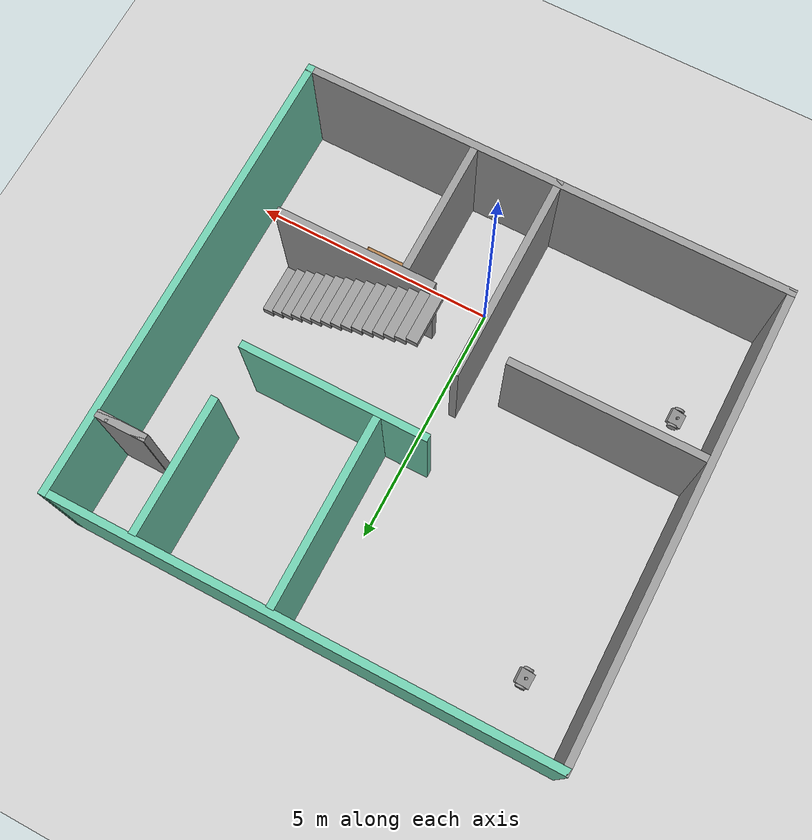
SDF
<sdf version="1.7">
 <world name="default">
  <plugin name="hello" filename="libhello.dylib"/>
  <light name="sun" type="directional">
   <pose>0 0 10 0 -0 0</pose>
   <diffuse>0.8 0.8 0.8 1</diffuse>
   <specular>0.2 0.2 0.2 1</specular>
   <attenuation>
    <range>1000</range>
    <constant>0.9</constant>
    <linear>0.01</linear>
    <quadratic>0.001</quadratic>
   </attenuation>
   <direction>-0.5 0.1 -0.9</direction>
   <spot><inner_angle>0</inner_angle><outer_angle>0</outer_angle><falloff>0</falloff></spot>
  </light>
  <model name="ground_plane">
   <static>1</static>
   <link name="link">
    <collision name="collision">
     <geometry><plane><normal>0 0 1</normal><size>100 100</size></plane></geometry>
     <surface>
      <contact><collide_bitmask>65535</collide_bitmask></contact>
      <friction><ode><mu>100</mu><mu2>50</mu2></ode></friction>
     </surface>
    </collision>
    <visual name="visual">
     <cast_shadows>0</cast_shadows>
     <geometry><plane><normal>0 0 1</normal><size>100 100</size></plane></geometry>
     <material>
      <script><uri>file://media/materials/scripts/gazebo.material</uri><name>Gazebo/Grey</name></script>
     </material>
    </visual>
   </link>
  </model>
  <gravity>0 0 -9.8</gravity>
  <magnetic_field>6e-06 2.3e-05 -4.2e-05</magnetic_field>
  <atmosphere type="adiabatic"/>
  <physics type="ode">
   <max_step_size>0.001</max_step_size>
   <real_time_factor>1</real_time_factor>
   <real_time_update_rate>1000</real_time_update_rate>
  </physics>
  <scene><ambient>0.4 0.4 0.4 1</ambient><background>0.7 0.7 0.7 1</background><shadows>1</shadows></scene>
  <spherical_coordinates>
   <surface_model>EARTH_WGS84</surface_model>
   <latitude_deg>0</latitude_deg>
   <longitude_deg>0</longitude_deg>
   <elevation>0</elevation>
   <heading_deg>0</heading_deg>
  </spherical_coordinates>
  <model name="our_house">
   <pose>-0.073859 2.59663 0 0 -0 0</pose>
   <link name="Stairs_0">
    <visual name="Stairs_0_Visual_0">
     <pose>3.89631 -1.16417 0.083333 0 -0 -1.5708</pose>
     <geometry><box><size>1 0.231 0.166667</size></box></geometry>
     <material>
      <script><uri>file://media/materials/scripts/gazebo.material</uri><name>Gazebo/Grey</name></script>
      <ambient>1 1 1 1</ambient>
     </material>
     <meta><layer>0</layer></meta>
    </visual>
    <collision name="Stairs_0_Collision_0">
     <geometry><box><size>1 0.231 0.166667</size></box></geometry>
     <pose>3.89631 -1.16417 0.083333 0 -0 -1.5708</pose>
    </collision>
    <visual name="Stairs_0_Visual_1">
     <pose>3.66531 -1.16417 0.25 0 -0 -1.5708</pose>
     <geometry><box><size>1 0.231 0.166667</size></box></geometry>
     <material>
      <script><uri>file://media/materials/scripts/gazebo.material</uri><name>Gazebo/Grey</name></script>
      <ambient>1 1 1 1</ambient>
     </material>
     <meta><layer>0</layer></meta>
    </visual>
    <collision name="Stairs_0_Collision_1">
     <geometry><box><size>1 0.231 0.166667</size></box></geometry>
     <pose>3.66531 -1.16417 0.25 0 -0 -1.5708</pose>
    </collision>
    <visual name="Stairs_0_Visual_2">
     <pose>3.43431 -1.16417 0.416667 0 -0 -1.5708</pose>
     <geometry><box><size>1 0.231 0.166667</size></box></geometry>
     <material>
      <script><uri>file://media/materials/scripts/gazebo.material</uri><name>Gazebo/Grey</name></script>
      <ambient>1 1 1 1</ambient>
     </material>
     <meta><layer>0</layer></meta>
    </visual>
    <collision name="Stairs_0_Collision_2">
     <geometry><box><size>1 0.231 0.166667</size></box></geometry>
     <pose>3.43431 -1.16417 0.416667 0 -0 -1.5708</pose>
    </collision>
    <visual name="Stairs_0_Visual_3">
     <pose>3.20331 -1.16417 0.583333 0 -0 -1.5708</pose>
     <geometry><box><size>1 0.231 0.166667</size></box></geometry>
     <material>
      <script><uri>file://media/materials/scripts/gazebo.material</uri><name>Gazebo/Grey</name></script>
      <ambient>1 1 1 1</ambient>
     </material>
     <meta><layer>0</layer></meta>
    </visual>
    <collision name="Stairs_0_Collision_3">
     <geometry><box><size>1 0.231 0.166667</size></box></geometry>
     <pose>3.20331 -1.16417 0.583333 0 -0 -1.5708</pose>
    </collision>
    <visual name="Stairs_0_Visual_4">
     <pose>2.97231 -1.16417 0.75 0 -0 -1.5708</pose>
     <geometry><box><size>1 0.231 0.166667</size></box></geometry>
     <material>
      <script><uri>file://media/materials/scripts/gazebo.material</uri><name>Gazebo/Grey</name></script>
      <ambient>1 1 1 1</ambient>
     </material>
     <meta><layer>0</layer></meta>
    </visual>
    <collision name="Stairs_0_Collision_4">
     <geometry><box><size>1 0.231 0.166667</size></box></geometry>
     <pose>2.97231 -1.16417 0.75 0 -0 -1.5708</pose>
    </collision>
    <visual name="Stairs_0_Visual_5">
     <pose>2.74131 -1.16417 0.916667 0 -0 -1.5708</pose>
     <geometry><box><size>1 0.231 0.166667</size></box></geometry>
     <material>
      <script><uri>file://media/materials/scripts/gazebo.material</uri><name>Gazebo/Grey</name></script>
      <ambient>1 1 1 1</ambient>
     </material>
     <meta><layer>0</layer></meta>
    </visual>
    <collision name="Stairs_0_Collision_5">
     <geometry><box><size>1 0.231 0.166667</size></box></geometry>
     <pose>2.74131 -1.16417 0.916667 0 -0 -1.5708</pose>
    </collision>
    <visual name="Stairs_0_Visual_6">
     <pose>2.51031 -1.16417 1.08333 0 -0 -1.5708</pose>
     <geometry><box><size>1 0.231 0.166667</size></box></geometry>
     <material>
      <script><uri>file://media/materials/scripts/gazebo.material</uri><name>Gazebo/Grey</name></script>
      <ambient>1 1 1 1</ambient>
     </material>
     <meta><layer>0</layer></meta>
    </visual>
    <collision name="Stairs_0_Collision_6">
     <geometry><box><size>1 0.231 0.166667</size></box></geometry>
     <pose>2.51031 -1.16417 1.08333 0 -0 -1.5708</pose>
    </collision>
    <visual name="Stairs_0_Visual_7">
     <pose>2.27931 -1.16417 1.25 0 -0 -1.5708</pose>
     <geometry><box><size>1 0.231 0.166667</size></box></geometry>
     <material>
      <script><uri>file://media/materials/scripts/gazebo.material</uri><name>Gazebo/Grey</name></script>
      <ambient>1 1 1 1</ambient>
     </material>
     <meta><layer>0</layer></meta>
    </visual>
    <collision name="Stairs_0_Collision_7">
     <geometry><box><size>1 0.231 0.166667</size></box></geometry>
     <pose>2.27931 -1.16417 1.25 0 -0 -1.5708</pose>
    </collision>
    <visual name="Stairs_0_Visual_8">
     <pose>2.04831 -1.16417 1.41667 0 -0 -1.5708</pose>
     <geometry><box><size>1 0.231 0.166667</size></box></geometry>
     <material>
      <script><uri>file://media/materials/scripts/gazebo.material</uri><name>Gazebo/Grey</name></script>
      <ambient>1 1 1 1</ambient>
     </material>
     <meta><layer>0</layer></meta>
    </visual>
    <collision name="Stairs_0_Collision_8">
     <geometry><box><size>1 0.231 0.166667</size></box></geometry>
     <pose>2.04831 -1.16417 1.41667 0 -0 -1.5708</pose>
    </collision>
    <visual name="Stairs_0_Visual_9">
     <pose>1.81731 -1.16417 1.58333 0 -0 -1.5708</pose>
     <geometry><box><size>1 0.231 0.166667</size></box></geometry>
     <material>
      <script><uri>file://media/materials/scripts/gazebo.material</uri><name>Gazebo/Grey</name></script>
      <ambient>1 1 1 1</ambient>
     </material>
     <meta><layer>0</layer></meta>
    </visual>
    <collision name="Stairs_0_Collision_9">
     <geometry><box><size>1 0.231 0.166667</size></box></geometry>
     <pose>1.81731 -1.16417 1.58333 0 -0 -1.5708</pose>
    </collision>
    <visual name="Stairs_0_Visual_10">
     <pose>1.58631 -1.16417 1.75 0 -0 -1.5708</pose>
     <geometry><box><size>1 0.231 0.166667</size></box></geometry>
     <material>
      <script><uri>file://media/materials/scripts/gazebo.material</uri><name>Gazebo/Grey</name></script>
      <ambient>1 1 1 1</ambient>
     </material>
     <meta><layer>0</layer></meta>
    </visual>
    <collision name="Stairs_0_Collision_10">
     <geometry><box><size>1 0.231 0.166667</size></box></geometry>
     <pose>1.58631 -1.16417 1.75 0 -0 -1.5708</pose>
    </collision>
    <visual name="Stairs_0_Visual_11">
     <pose>1.35531 -1.16417 1.91667 0 -0 -1.5708</pose>
     <geometry><box><size>1 0.231 0.166667</size></box></geometry>
     <material>
      <script><uri>file://media/materials/scripts/gazebo.material</uri><name>Gazebo/Grey</name></script>
      <ambient>1 1 1 1</ambient>
     </material>
     <meta><layer>0</layer></meta>
    </visual>
    <collision name="Stairs_0_Collision_11">
     <geometry><box><size>1 0.231 0.166667</size></box></geometry>
     <pose>1.35531 -1.16417 1.91667 0 -0 -1.5708</pose>
    </collision>
    <visual name="Stairs_0_Visual_12">
     <pose>1.12431 -1.16417 2.08333 0 -0 -1.5708</pose>
     <geometry><box><size>1 0.231 0.166667</size></box></geometry>
     <material>
      <script><uri>file://media/materials/scripts/gazebo.material</uri><name>Gazebo/Grey</name></script>
      <ambient>1 1 1 1</ambient>
     </material>
     <meta><layer>0</layer></meta>
    </visual>
    <collision name="Stairs_0_Collision_12">
     <geometry><box><size>1 0.231 0.166667</size></box></geometry>
     <pose>1.12431 -1.16417 2.08333 0 -0 -1.5708</pose>
    </collision>
    <visual name="Stairs_0_Visual_13">
     <pose>0.89331 -1.16417 2.25 0 -0 -1.5708</pose>
     <geometry><box><size>1 0.231 0.166667</size></box></geometry>
     <material>
      <script><uri>file://media/materials/scripts/gazebo.material</uri><name>Gazebo/Grey</name></script>
      <ambient>1 1 1 1</ambient>
     </material>
     <meta><layer>0</layer></meta>
    </visual>
    <collision name="Stairs_0_Collision_13">
     <geometry><box><size>1 0.231 0.166667</size></box></geometry>
     <pose>0.89331 -1.16417 2.25 0 -0 -1.5708</pose>
    </collision>
    <visual name="Stairs_0_Visual_14">
     <pose>0.66231 -1.16417 2.41667 0 -0 -1.5708</pose>
     <geometry><box><size>1 0.231 0.166667</size></box></geometry>
     <material>
      <script><uri>file://media/materials/scripts/gazebo.material</uri><name>Gazebo/Grey</name></script>
      <ambient>1 1 1 1</ambient>
     </material>
     <meta><layer>0</layer></meta>
    </visual>
    <collision name="Stairs_0_Collision_14">
     <geometry><box><size>1 0.231 0.166667</size></box></geometry>
     <pose>0.66231 -1.16417 2.41667 0 -0 -1.5708</pose>
    </collision>
   </link>
   <link name="Wall_0">
    <collision name="Wall_0_Collision">
     <geometry><box><size>10 0.15 2.5</size></box></geometry>
     <pose>0 0 1.25 0 -0 0</pose>
    </collision>
    <visual name="Wall_0_Visual">
     <pose>0 0 1.25 0 -0 0</pose>
     <geometry><box><size>10 0.15 2.5</size></box></geometry>
     <material>
      <script><uri>file://media/materials/scripts/gazebo.material</uri><name>Gazebo/Grey</name></script>
      <ambient>1 1 1 1</ambient>
     </material>
     <meta><layer>0</layer></meta>
    </visual>
    <pose>-0.001141 -4.63663 0 0 -0 0</pose>
   </link>
   <link name="Wall_1">
    <collision name="Wall_1_Collision">
     <geometry><box><size>9.42511 0.15 2.5</size></box></geometry>
     <pose>0 0 1.25 0 -0 0</pose>
    </collision>
    <visual name="Wall_1_Visual">
     <pose>0 0 1.25 0 -0 0</pose>
     <geometry><box><size>9.42511 0.15 2.5</size></box></geometry>
     <material>
      <script><uri>file://media/materials/scripts/gazebo.material</uri><name>Gazebo/Grey</name></script>
      <ambient>0.435294 0.796078 0.67451 1</ambient>
     </material>
     <meta><layer>0</layer></meta>
    </visual>
    <pose>4.925 0.000921 0 0 -0 1.57055</pose>
   </link>
   <link name="Wall_11">
    <collision name="Wall_11_Collision">
     <geometry><box><size>4.25 0.15 2.5</size></box></geometry>
     <pose>0 0 1.25 0 -0 0</pose>
    </collision>
    <visual name="Wall_11_Visual">
     <pose>0 0 1.25 0 -0 0</pose>
     <geometry><box><size>4.25 0.15 2.5</size></box></geometry>
     <material>
      <script><uri>file://media/materials/scripts/gazebo.material</uri><name>Gazebo/Grey</name></script>
      <ambient>1 1 1 1</ambient>
     </material>
     <meta><layer>0</layer></meta>
    </visual>
    <pose>-0.293634 -2.58849 0 0 -0 1.5708</pose>
   </link>
   <link name="Wall_13">
    <collision name="Wall_13_Collision">
     <geometry><box><size>3.75 0.15 2.5</size></box></geometry>
     <pose>0 0 1.25 0 -0 0</pose>
    </collision>
    <visual name="Wall_13_Visual">
     <pose>0 0 1.25 0 -0 0</pose>
     <geometry><box><size>3.75 0.15 2.5</size></box></geometry>
     <material>
      <script><uri>file://media/materials/scripts/gazebo.material</uri><name>Gazebo/Grey</name></script>
      <ambient>0.435294 0.796078 0.67451 1</ambient>
     </material>
     <meta><layer>0</layer></meta>
    </visual>
    <pose>1.43639 0.772014 0 0 -0 0</pose>
   </link>
   <link name="Wall_15">
    <collision name="Wall_15_Collision">
     <geometry><box><size>3.75 0.15 2.5</size></box></geometry>
     <pose>0 0 1.25 0 -0 0</pose>
    </collision>
    <visual name="Wall_15_Visual">
     <pose>0 0 1.25 0 -0 0</pose>
     <geometry><box><size>3.75 0.15 2.5</size></box></geometry>
     <material>
      <script><uri>file://media/materials/scripts/gazebo.material</uri><name>Gazebo/Grey</name></script>
      <ambient>0.435294 0.796078 0.67451 1</ambient>
     </material>
     <meta><layer>0</layer></meta>
    </visual>
    <pose>0.538267 2.71044 0 0 -0 1.5708</pose>
   </link>
   <link name="Wall_17">
    <collision name="Wall_17_Collision">
     <geometry><box><size>2.75 0.15 2.5</size></box></geometry>
     <pose>0 0 1.25 0 -0 0</pose>
    </collision>
    <visual name="Wall_17_Visual">
     <pose>0 0 1.25 0 -0 0</pose>
     <geometry><box><size>2.75 0.15 2.5</size></box></geometry>
     <material>
      <script><uri>file://media/materials/scripts/gazebo.material</uri><name>Gazebo/Grey</name></script>
      <ambient>0.435294 0.796078 0.67451 1</ambient>
     </material>
     <meta><layer>0</layer></meta>
    </visual>
    <pose>3.20438 3.20907 0 0 -0 -1.5708</pose>
   </link>
   <link name="Wall_2">
    <collision name="Wall_2_Collision">
     <geometry><box><size>10 0.15 2.5</size></box></geometry>
     <pose>0 0 1.25 0 -0 0</pose>
    </collision>
    <visual name="Wall_2_Visual">
     <pose>0 0 1.25 0 -0 0</pose>
     <geometry><box><size>10 0.15 2.5</size></box></geometry>
     <material>
      <script><uri>file://media/materials/scripts/gazebo.material</uri><name>Gazebo/Grey</name></script>
      <ambient>0.435294 0.796078 0.67451 1</ambient>
     </material>
     <meta><layer>0</layer></meta>
    </visual>
    <pose>0.001141 4.63848 0 0 -0 3.14159</pose>
   </link>
   <link name="Wall_20">
    <collision name="Wall_20_Collision">
     <geometry><box><size>0.15 0.15 2.5</size></box></geometry>
     <pose>0 0 1.25 0 -0 0</pose>
    </collision>
    <visual name="Wall_20_Visual">
     <pose>0 0 1.25 0 -0 0</pose>
     <geometry><box><size>0.15 0.15 2.5</size></box></geometry>
     <material>
      <script><uri>file://media/materials/scripts/gazebo.material</uri><name>Gazebo/Grey</name></script>
      <ambient>1 1 1 1</ambient>
     </material>
     <meta><layer>0</layer></meta>
    </visual>
    <pose>4.60646 3.02926 0 0 -0 0</pose>
   </link>
   <link name="Wall_21">
    <collision name="Wall_21_Collision">
     <geometry><box><size>0.15 0.15 2.5</size></box></geometry>
     <pose>0 0 1.25 0 -0 0</pose>
    </collision>
    <visual name="Wall_21_Visual">
     <pose>0 0 1.25 0 -0 0</pose>
     <geometry><box><size>0.15 0.15 2.5</size></box></geometry>
     <material>
      <script><uri>file://media/materials/scripts/gazebo.material</uri><name>Gazebo/Grey</name></script>
      <ambient>0.435294 0.796078 0.67451 1</ambient>
     </material>
     <meta><layer>0</layer></meta>
    </visual>
    <pose>4.60646 3.02926 0 0 -0 0</pose>
   </link>
   <link name="Wall_25">
    <collision name="Wall_25_Collision">
     <geometry><box><size>1 0.15 2.5</size></box></geometry>
     <pose>0 0 1.25 0 -0 0</pose>
    </collision>
    <visual name="Wall_25_Visual">
     <pose>0 0 1.25 0 -0 0</pose>
     <geometry><box><size>1 0.15 2.5</size></box></geometry>
     <material>
      <script><uri>file://media/materials/scripts/gazebo.material</uri><name>Gazebo/Grey</name></script>
      <ambient>1 1 1 1</ambient>
     </material>
     <meta><layer>0</layer></meta>
    </visual>
    <pose>4.37929 3.03721 0 0 -0 0</pose>
   </link>
   <link name="Wall_26">
    <collision name="Wall_26_Collision">
     <geometry><box><size>1 0.15 2.5</size></box></geometry>
     <pose>0 0 1.25 0 -0 0</pose>
    </collision>
    <visual name="Wall_26_Visual">
     <pose>0 0 1.25 0 -0 0</pose>
     <geometry><box><size>1 0.15 2.5</size></box></geometry>
     <material>
      <script><uri>file://media/materials/scripts/gazebo.material</uri><name>Gazebo/Grey</name></script>
      <ambient>1 1 1 1</ambient>
     </material>
     <meta><layer>0</layer></meta>
    </visual>
    <pose>4.37173 3.02965 0 0 -0 3.14159</pose>
   </link>
   <link name="Wall_3">
    <collision name="Wall_3_Collision">
     <geometry><box><size>9.42511 0.15 2.5</size></box></geometry>
     <pose>0 0 1.25 0 -0 0</pose>
    </collision>
    <visual name="Wall_3_Visual">
     <pose>0 0 1.25 0 -0 0</pose>
     <geometry><box><size>9.42511 0.15 2.5</size></box></geometry>
     <material>
      <script><uri>file://media/materials/scripts/gazebo.material</uri><name>Gazebo/Grey</name></script>
      <ambient>1 1 1 1</ambient>
     </material>
     <meta><layer>0</layer></meta>
    </visual>
    <pose>-4.925 0.000921 0 0 -0 -1.57104</pose>
   </link>
   <link name="Wall_5">
    <collision name="Wall_5_Collision">
     <geometry><box><size>2.75 0.15 2.5</size></box></geometry>
     <pose>0 0 1.25 0 -0 0</pose>
    </collision>
    <visual name="Wall_5_Visual">
     <pose>0 0 1.25 0 -0 0</pose>
     <geometry><box><size>2.75 0.15 2.5</size></box></geometry>
     <material>
      <script><uri>file://media/materials/scripts/gazebo.material</uri><name>Gazebo/Grey</name></script>
      <ambient>1 1 1 1</ambient>
     </material>
     <meta><layer>0</layer></meta>
    </visual>
    <pose>1.40888 -3.23341 0 0 -0 -1.5708</pose>
   </link>
   <link name="Wall_7">
    <collision name="Wall_7_Collision">
     <geometry><box><size>3.25 0.15 2.5</size></box></geometry>
     <pose>0 0 1.25 0 -0 0</pose>
    </collision>
    <visual name="Wall_7_Visual">
     <pose>0 0 1.25 0 -0 0</pose>
     <geometry><box><size>3.25 0.15 2.5</size></box></geometry>
     <material>
      <script><uri>file://media/materials/scripts/gazebo.material</uri><name>Gazebo/Grey</name></script>
      <ambient>1 1 1 1</ambient>
     </material>
     <meta><layer>0</layer></meta>
    </visual>
    <pose>2.40641 -1.776 0 0 -0 0</pose>
   </link>
   <link name="Wall_9">
    <collision name="Wall_9_Collision">
     <geometry><box><size>4 0.15 2.5</size></box></geometry>
     <pose>0 0 1.25 0 -0 0</pose>
    </collision>
    <visual name="Wall_9_Visual">
     <pose>0 0 1.25 0 -0 0</pose>
     <geometry><box><size>4 0.15 2.5</size></box></geometry>
     <material>
      <script><uri>file://media/materials/scripts/gazebo.material</uri><name>Gazebo/Grey</name></script>
      <ambient>1 1 1 1</ambient>
     </material>
     <meta><layer>0</layer></meta>
    </visual>
    <pose>-2.99752 -1.12887 0 0 -0 0</pose>
   </link>
   <static>1</static>
  </model>
  <model name="bookshelf">
   <static>1</static>
   <link name="link">
    <inertial><mass>1</mass></inertial>
    <collision name="back">
     <pose>0 0.005 0.6 0 -0 0</pose>
     <geometry><box><size>0.9 0.01 1.2</size></box></geometry>
    </collision>
    <visual name="visual1">
     <pose>0 0.005 0.6 0 -0 0</pose>
     <geometry><box><size>0.9 0.01 1.2</size></box></geometry>
     <material>
      <script><uri>file://media/materials/scripts/gazebo.material</uri><name>Gazebo/Wood</name></script>
     </material>
    </visual>
    <collision name="left_side">
     <pose>0.45 -0.195 0.6 0 -0 0</pose>
     <geometry><box><size>0.02 0.4 1.2</size></box></geometry>
    </collision>
    <visual name="visual2">
     <pose>0.45 -0.195 0.6 0 -0 0</pose>
     <geometry><box><size>0.02 0.4 1.2</size></box></geometry>
     <material>
      <script><uri>file://media/materials/scripts/gazebo.material</uri><name>Gazebo/Wood</name></script>
     </material>
    </visual>
    <collision name="right_side">
     <pose>-0.45 -0.195 0.6 0 -0 0</pose>
     <geometry><box><size>0.02 0.4 1.2</size></box></geometry>
    </collision>
    <visual name="visual3">
     <pose>-0.45 -0.195 0.6 0 -0 0</pose>
     <geometry><box><size>0.02 0.4 1.2</size></box></geometry>
     <material>
      <script><uri>file://media/materials/scripts/gazebo.material</uri><name>Gazebo/Wood</name></script>
     </material>
    </visual>
    <collision name="bottom">
     <pose>0 -0.195 0.03 0 -0 0</pose>
     <geometry><box><size>0.88 0.4 0.06</size></box></geometry>
    </collision>
    <visual name="visual4">
     <pose>0 -0.195 0.03 0 -0 0</pose>
     <geometry><box><size>0.88 0.4 0.06</size></box></geometry>
     <material>
      <script><uri>file://media/materials/scripts/gazebo.material</uri><name>Gazebo/Wood</name></script>
     </material>
    </visual>
    <collision name="top">
     <pose>0 -0.195 1.19 0 -0 0</pose>
     <geometry><box><size>0.88 0.4 0.02</size></box></geometry>
    </collision>
    <visual name="visual5">
     <pose>0 -0.195 1.19 0 -0 0</pose>
     <geometry><box><size>0.88 0.4 0.02</size></box></geometry>
     <material>
      <script><uri>file://media/materials/scripts/gazebo.material</uri><name>Gazebo/Wood</name></script>
     </material>
    </visual>
    <collision name="low_shelf">
     <pose>0 -0.195 0.43 0 -0 0</pose>
     <geometry><box><size>0.88 0.4 0.02</size></box></geometry>
    </collision>
    <visual name="visual6">
     <pose>0 -0.195 0.43 0 -0 0</pose>
     <geometry><box><size>0.88 0.4 0.02</size></box></geometry>
     <material>
      <script><uri>file://media/materials/scripts/gazebo.material</uri><name>Gazebo/Wood</name></script>
     </material>
    </visual>
    <collision name="high_shelf">
     <pose>0 -0.195 0.8 0 -0 0</pose>
     <geometry><box><size>0.88 0.4 0.02</size></box></geometry>
    </collision>
    <visual name="visual7">
     <pose>0 -0.195 0.8 0 -0 0</pose>
     <geometry><box><size>0.88 0.4 0.02</size></box></geometry>
     <material>
      <script><uri>file://media/materials/scripts/gazebo.material</uri><name>Gazebo/Wood</name></script>
     </material>
    </visual>
   </link>
   <pose>2 0.584426 0 0 -0 0</pose>
  </model>
  <model name="my_robot">
   <link name="link_3">
    <inertial>
     <mass>1</mass>
     <inertia><ixx>0.145833</ixx><ixy>0</ixy><ixz>0</ixz><iyy>0.145833</iyy><iyz>0</iyz><izz>0.125</izz></inertia>
    </inertial>
    <pose>-8.2547 0.437994 0.48125 -0 -0 -0</pose>
    <visual name="visual">
     <pose>0 0 0 1.5707 -0 0</pose>
     <geometry><cylinder><radius>0.1</radius><length>0.05</length></cylinder></geometry>
     <material>
      <lighting>1</lighting>
      <script><uri>file://media/materials/scripts/gazebo.material</uri><name>Gazebo/Grey</name></script>
      <shader type="pixel"><normal_map>__default__</normal_map></shader>
      <ambient>0.3 0.3 0.3 1</ambient>
      <diffuse>0.7 0.7 0.7 1</diffuse>
      <specular>0.01 0.01 0.01 1</specular>
      <emissive>0 0 0 1</emissive>
     </material>
    </visual>
    <collision name="collision">
     <pose>0 0 0 1.5707 -0 0</pose>
     <geometry><cylinder><radius>0.1</radius><length>0.05</length></cylinder></geometry>
     <surface>
      <friction>
       <ode><mu>1</mu><mu2>1</mu2><fdir1>0 0 0</fdir1><slip1>0</slip1><slip2>0</slip2></ode>
       <torsional>
        <coefficient>1</coefficient>
        <patch_radius>0</patch_radius>
        <surface_radius>0</surface_radius>
        <use_patch_radius>1</use_patch_radius>
        <ode><slip>0</slip></ode>
       </torsional>
      </friction>
      <bounce><restitution_coefficient>0</restitution_coefficient><threshold>1e+06</threshold></bounce>
      <contact>
       <collide_without_contact>0</collide_without_contact>
       <collide_without_contact_bitmask>1</collide_without_contact_bitmask>
       <collide_bitmask>1</collide_bitmask>
       <ode>
        <soft_cfm>0</soft_cfm>
        <soft_erp>0.2</soft_erp>
        <kp>1e+13</kp>
        <kd>1</kd>
        <max_vel>0.01</max_vel>
        <min_depth>0</min_depth>
       </ode>
       <bullet>
        <split_impulse>1</split_impulse>
        <split_impulse_penetration_threshold>-0.01</split_impulse_penetration_threshold>
        <soft_cfm>0</soft_cfm>
        <soft_erp>0.2</soft_erp>
        <kp>1e+13</kp>
        <kd>1</kd>
       </bullet>
      </contact>
     </surface>
    </collision>
   </link>
   <link name="link_5">
    <inertial>
     <mass>1</mass>
     <inertia><ixx>0.145833</ixx><ixy>0</ixy><ixz>0</ixz><iyy>0.145833</iyy><iyz>0</iyz><izz>0.125</izz></inertia>
     <pose>0 0 0 1.5707 -0 0</pose>
    </inertial>
    <pose>-8.2547 0.787994 0.48125 -0 -0 -0</pose>
    <visual name="visual">
     <pose>0 0 0 -1.5707 0 0</pose>
     <geometry><cylinder><radius>0.1</radius><length>0.05</length></cylinder></geometry>
     <material>
      <lighting>1</lighting>
      <script><uri>file://media/materials/scripts/gazebo.material</uri><name>Gazebo/Grey</name></script>
      <shader type="pixel"><normal_map>__default__</normal_map></shader>
      <ambient>0.3 0.3 0.3 1</ambient>
      <diffuse>0.7 0.7 0.7 1</diffuse>
      <specular>0.01 0.01 0.01 1</specular>
      <emissive>0 0 0 1</emissive>
     </material>
    </visual>
    <collision name="collision">
     <pose>0 0 0 1.5707 -0 0</pose>
     <geometry><cylinder><radius>0.1</radius><length>0.05</length></cylinder></geometry>
     <surface>
      <friction>
       <ode><mu>1</mu><mu2>1</mu2><fdir1>0 0 0</fdir1><slip1>0</slip1><slip2>0</slip2></ode>
       <torsional>
        <coefficient>1</coefficient>
        <patch_radius>0</patch_radius>
        <surface_radius>0</surface_radius>
        <use_patch_radius>1</use_patch_radius>
        <ode><slip>0</slip></ode>
       </torsional>
      </friction>
      <bounce><restitution_coefficient>0</restitution_coefficient><threshold>1e+06</threshold></bounce>
      <contact>
       <collide_without_contact>0</collide_without_contact>
       <collide_without_contact_bitmask>1</collide_without_contact_bitmask>
       <collide_bitmask>1</collide_bitmask>
       <ode>
        <soft_cfm>0</soft_cfm>
        <soft_erp>0.2</soft_erp>
        <kp>1e+13</kp>
        <kd>1</kd>
        <max_vel>0.01</max_vel>
        <min_depth>0</min_depth>
       </ode>
       <bullet>
        <split_impulse>1</split_impulse>
        <split_impulse_penetration_threshold>-0.01</split_impulse_penetration_threshold>
        <soft_cfm>0</soft_cfm>
        <soft_erp>0.2</soft_erp>
        <kp>1e+13</kp>
        <kd>1</kd>
       </bullet>
      </contact>
     </surface>
    </collision>
   </link>
   <link name="link_6">
    <inertial>
     <mass>1</mass>
     <inertia>
      <ixx>0.166667</ixx>
      <ixy>0</ixy>
      <ixz>0</ixz>
      <iyy>0.166667</iyy>
      <iyz>0</iyz>
      <izz>0.166667</izz>
     </inertia>
    </inertial>
    <pose>-8.2547 0.612994 0.48125 -0 -0 -0</pose>
    <visual name="visual">
     <geometry><box><size>0.3 0.3 0.1</size></box></geometry>
     <material>
      <lighting>1</lighting>
      <script><uri>file://media/materials/scripts/gazebo.material</uri><name>Gazebo/Grey</name></script>
      <shader type="pixel"><normal_map>__default__</normal_map></shader>
      <ambient>0.3 0.3 0.3 1</ambient>
      <diffuse>0.7 0.7 0.7 1</diffuse>
      <specular>0.01 0.01 0.01 1</specular>
      <emissive>0 0 0 1</emissive>
     </material>
    </visual>
    <collision name="collision">
     <geometry><box><size>0.3 0.3 0.1</size></box></geometry>
     <surface>
      <friction>
       <ode><mu>1</mu><mu2>1</mu2><fdir1>0 0 0</fdir1><slip1>0</slip1><slip2>0</slip2></ode>
       <torsional>
        <coefficient>1</coefficient>
        <patch_radius>0</patch_radius>
        <surface_radius>0</surface_radius>
        <use_patch_radius>1</use_patch_radius>
        <ode><slip>0</slip></ode>
       </torsional>
      </friction>
      <bounce><restitution_coefficient>0</restitution_coefficient><threshold>1e+06</threshold></bounce>
      <contact>
       <collide_without_contact>0</collide_without_contact>
       <collide_without_contact_bitmask>1</collide_without_contact_bitmask>
       <collide_bitmask>1</collide_bitmask>
       <ode>
        <soft_cfm>0</soft_cfm>
        <soft_erp>0.2</soft_erp>
        <kp>1e+13</kp>
        <kd>1</kd>
        <max_vel>0.01</max_vel>
        <min_depth>0</min_depth>
       </ode>
       <bullet>
        <split_impulse>1</split_impulse>
        <split_impulse_penetration_threshold>-0.01</split_impulse_penetration_threshold>
        <soft_cfm>0</soft_cfm>
        <soft_erp>0.2</soft_erp>
        <kp>1e+13</kp>
        <kd>1</kd>
       </bullet>
      </contact>
     </surface>
    </collision>
   </link>
   <link name="link_7">
    <inertial>
     <mass>1</mass>
     <inertia><ixx>0.145833</ixx><ixy>0</ixy><ixz>0</ixz><iyy>0.145833</iyy><iyz>0</iyz><izz>0.125</izz></inertia>
    </inertial>
    <pose>-8.2547 0.612994 0.55625 -0 -0 -0</pose>
    <visual name="visual">
     <geometry><cylinder><radius>0.025</radius><length>0.05</length></cylinder></geometry>
     <material>
      <lighting>1</lighting>
      <script><uri>file://media/materials/scripts/gazebo.material</uri><name>Gazebo/Grey</name></script>
      <shader type="pixel"><normal_map>__default__</normal_map></shader>
      <ambient>0.3 0.3 0.3 1</ambient>
      <diffuse>0.7 0.7 0.7 1</diffuse>
      <specular>0.01 0.01 0.01 1</specular>
      <emissive>0 0 0 1</emissive>
     </material>
    </visual>
    <collision name="collision">
     <geometry><cylinder><radius>0.025</radius><length>0.05</length></cylinder></geometry>
     <surface>
      <friction>
       <ode><mu>1</mu><mu2>1</mu2><fdir1>0 0 0</fdir1><slip1>0</slip1><slip2>0</slip2></ode>
       <torsional>
        <coefficient>1</coefficient>
        <patch_radius>0</patch_radius>
        <surface_radius>0</surface_radius>
        <use_patch_radius>1</use_patch_radius>
        <ode><slip>0</slip></ode>
       </torsional>
      </friction>
      <bounce><restitution_coefficient>0</restitution_coefficient><threshold>1e+06</threshold></bounce>
      <contact>
       <collide_without_contact>0</collide_without_contact>
       <collide_without_contact_bitmask>1</collide_without_contact_bitmask>
       <collide_bitmask>1</collide_bitmask>
       <ode>
        <soft_cfm>0</soft_cfm>
        <soft_erp>0.2</soft_erp>
        <kp>1e+13</kp>
        <kd>1</kd>
        <max_vel>0.01</max_vel>
        <min_depth>0</min_depth>
       </ode>
       <bullet>
        <split_impulse>1</split_impulse>
        <split_impulse_penetration_threshold>-0.01</split_impulse_penetration_threshold>
        <soft_cfm>0</soft_cfm>
        <soft_erp>0.2</soft_erp>
        <kp>1e+13</kp>
        <kd>1</kd>
       </bullet>
      </contact>
     </surface>
    </collision>
   </link>
   <joint name="link_6_JOINT_4" type="revolute">
    <parent>link_6</parent>
    <child>link_5</child>
    <axis>
     <xyz>0 0 1</xyz>
     <limit>
      <lower>-1.79769e+308</lower>
      <upper>1.79769e+308</upper>
      <effort>-1</effort>
      <velocity>-1</velocity>
     </limit>
     <dynamics>
      <spring_reference>0</spring_reference>
      <spring_stiffness>0</spring_stiffness>
      <damping>0</damping>
      <friction>0</friction>
     </dynamics>
    </axis>
    <physics>
     <ode><limit><cfm>0</cfm><erp>0.2</erp></limit><suspension><cfm>0</cfm><erp>0.2</erp></suspension></ode>
    </physics>
   </joint>
   <joint name="link_6_JOINT_5" type="revolute">
    <parent>link_6</parent>
    <child>link_3</child>
    <axis>
     <xyz>0 0 1</xyz>
     <limit>
      <lower>-1.79769e+308</lower>
      <upper>1.79769e+308</upper>
      <effort>-1</effort>
      <velocity>-1</velocity>
     </limit>
     <dynamics>
      <spring_reference>0</spring_reference>
      <spring_stiffness>0</spring_stiffness>
      <damping>0</damping>
      <friction>0</friction>
     </dynamics>
    </axis>
    <physics>
     <ode><limit><cfm>0</cfm><erp>0.2</erp></limit><suspension><cfm>0</cfm><erp>0.2</erp></suspension></ode>
    </physics>
   </joint>
   <joint name="link_6_JOINT_6" type="fixed">
    <parent>link_6</parent>
    <child>link_7</child>
    <physics>
     <ode><limit><cfm>0</cfm><erp>0.2</erp></limit><suspension><cfm>0</cfm><erp>0.2</erp></suspension></ode>
    </physics>
   </joint>
   <static>0</static>
   <pose>3.65865 -0.469745 2.58082 0.000103 -0.362959 -0.007984</pose>
  </model>
  <model name="my_robot_clone">
   <link name="link_3">
    <inertial>
     <mass>1</mass>
     <inertia><ixx>0.145833</ixx><ixy>0</ixy><ixz>0</ixz><iyy>0.145833</iyy><iyz>0</iyz><izz>0.125</izz></inertia>
    </inertial>
    <pose>-8.2547 0.437994 0.48125 -0 -0 -0</pose>
    <visual name="visual">
     <pose>0 0 0 1.5707 -0 0</pose>
     <geometry><cylinder><radius>0.1</radius><length>0.05</length></cylinder></geometry>
     <material>
      <lighting>1</lighting>
      <script><uri>file://media/materials/scripts/gazebo.material</uri><name>Gazebo/Grey</name></script>
      <shader type="pixel"><normal_map>__default__</normal_map></shader>
      <ambient>0.3 0.3 0.3 1</ambient>
      <diffuse>0.7 0.7 0.7 1</diffuse>
      <specular>0.01 0.01 0.01 1</specular>
      <emissive>0 0 0 1</emissive>
     </material>
    </visual>
    <collision name="collision">
     <pose>0 0 0 1.5707 -0 0</pose>
     <geometry><cylinder><radius>0.1</radius><length>0.05</length></cylinder></geometry>
     <surface>
      <friction>
       <ode><mu>1</mu><mu2>1</mu2><fdir1>0 0 0</fdir1><slip1>0</slip1><slip2>0</slip2></ode>
       <torsional>
        <coefficient>1</coefficient>
        <patch_radius>0</patch_radius>
        <surface_radius>0</surface_radius>
        <use_patch_radius>1</use_patch_radius>
        <ode><slip>0</slip></ode>
       </torsional>
      </friction>
      <bounce><restitution_coefficient>0</restitution_coefficient><threshold>1e+06</threshold></bounce>
      <contact>
       <collide_without_contact>0</collide_without_contact>
       <collide_without_contact_bitmask>1</collide_without_contact_bitmask>
       <collide_bitmask>1</collide_bitmask>
       <ode>
        <soft_cfm>0</soft_cfm>
        <soft_erp>0.2</soft_erp>
        <kp>1e+13</kp>
        <kd>1</kd>
        <max_vel>0.01</max_vel>
        <min_depth>0</min_depth>
       </ode>
       <bullet>
        <split_impulse>1</split_impulse>
        <split_impulse_penetration_threshold>-0.01</split_impulse_penetration_threshold>
        <soft_cfm>0</soft_cfm>
        <soft_erp>0.2</soft_erp>
        <kp>1e+13</kp>
        <kd>1</kd>
       </bullet>
      </contact>
     </surface>
    </collision>
   </link>
   <link name="link_5">
    <inertial>
     <mass>1</mass>
     <inertia><ixx>0.145833</ixx><ixy>0</ixy><ixz>0</ixz><iyy>0.145833</iyy><iyz>0</iyz><izz>0.125</izz></inertia>
     <pose>0 0 0 1.5707 -0 0</pose>
    </inertial>
    <pose>-8.2547 0.787994 0.48125 -0 -0 -0</pose>
    <visual name="visual">
     <pose>0 0 0 -1.5707 0 0</pose>
     <geometry><cylinder><radius>0.1</radius><length>0.05</length></cylinder></geometry>
     <material>
      <lighting>1</lighting>
      <script><uri>file://media/materials/scripts/gazebo.material</uri><name>Gazebo/Grey</name></script>
      <shader type="pixel"><normal_map>__default__</normal_map></shader>
      <ambient>0.3 0.3 0.3 1</ambient>
      <diffuse>0.7 0.7 0.7 1</diffuse>
      <specular>0.01 0.01 0.01 1</specular>
      <emissive>0 0 0 1</emissive>
     </material>
    </visual>
    <collision name="collision">
     <pose>0 0 0 1.5707 -0 0</pose>
     <geometry><cylinder><radius>0.1</radius><length>0.05</length></cylinder></geometry>
     <surface>
      <friction>
       <ode><mu>1</mu><mu2>1</mu2><fdir1>0 0 0</fdir1><slip1>0</slip1><slip2>0</slip2></ode>
       <torsional>
        <coefficient>1</coefficient>
        <patch_radius>0</patch_radius>
        <surface_radius>0</surface_radius>
        <use_patch_radius>1</use_patch_radius>
        <ode><slip>0</slip></ode>
       </torsional>
      </friction>
      <bounce><restitution_coefficient>0</restitution_coefficient><threshold>1e+06</threshold></bounce>
      <contact>
       <collide_without_contact>0</collide_without_contact>
       <collide_without_contact_bitmask>1</collide_without_contact_bitmask>
       <collide_bitmask>1</collide_bitmask>
       <ode>
        <soft_cfm>0</soft_cfm>
        <soft_erp>0.2</soft_erp>
        <kp>1e+13</kp>
        <kd>1</kd>
        <max_vel>0.01</max_vel>
        <min_depth>0</min_depth>
       </ode>
       <bullet>
        <split_impulse>1</split_impulse>
        <split_impulse_penetration_threshold>-0.01</split_impulse_penetration_threshold>
        <soft_cfm>0</soft_cfm>
        <soft_erp>0.2</soft_erp>
        <kp>1e+13</kp>
        <kd>1</kd>
       </bullet>
      </contact>
     </surface>
    </collision>
   </link>
   <link name="link_6">
    <inertial>
     <mass>1</mass>
     <inertia>
      <ixx>0.166667</ixx>
      <ixy>0</ixy>
      <ixz>0</ixz>
      <iyy>0.166667</iyy>
      <iyz>0</iyz>
      <izz>0.166667</izz>
     </inertia>
    </inertial>
    <pose>-8.2547 0.612994 0.48125 -0 -0 -0</pose>
    <visual name="visual">
     <geometry><box><size>0.3 0.3 0.1</size></box></geometry>
     <material>
      <lighting>1</lighting>
      <script><uri>file://media/materials/scripts/gazebo.material</uri><name>Gazebo/Grey</name></script>
      <shader type="pixel"><normal_map>__default__</normal_map></shader>
      <ambient>0.3 0.3 0.3 1</ambient>
      <diffuse>0.7 0.7 0.7 1</diffuse>
      <specular>0.01 0.01 0.01 1</specular>
      <emissive>0 0 0 1</emissive>
     </material>
    </visual>
    <collision name="collision">
     <geometry><box><size>0.3 0.3 0.1</size></box></geometry>
     <surface>
      <friction>
       <ode><mu>1</mu><mu2>1</mu2><fdir1>0 0 0</fdir1><slip1>0</slip1><slip2>0</slip2></ode>
       <torsional>
        <coefficient>1</coefficient>
        <patch_radius>0</patch_radius>
        <surface_radius>0</surface_radius>
        <use_patch_radius>1</use_patch_radius>
        <ode><slip>0</slip></ode>
       </torsional>
      </friction>
      <bounce><restitution_coefficient>0</restitution_coefficient><threshold>1e+06</threshold></bounce>
      <contact>
       <collide_without_contact>0</collide_without_contact>
       <collide_without_contact_bitmask>1</collide_without_contact_bitmask>
       <collide_bitmask>1</collide_bitmask>
       <ode>
        <soft_cfm>0</soft_cfm>
        <soft_erp>0.2</soft_erp>
        <kp>1e+13</kp>
        <kd>1</kd>
        <max_vel>0.01</max_vel>
        <min_depth>0</min_depth>
       </ode>
       <bullet>
        <split_impulse>1</split_impulse>
        <split_impulse_penetration_threshold>-0.01</split_impulse_penetration_threshold>
        <soft_cfm>0</soft_cfm>
        <soft_erp>0.2</soft_erp>
        <kp>1e+13</kp>
        <kd>1</kd>
       </bullet>
      </contact>
     </surface>
    </collision>
   </link>
   <link name="link_7">
    <inertial>
     <mass>1</mass>
     <inertia><ixx>0.145833</ixx><ixy>0</ixy><ixz>0</ixz><iyy>0.145833</iyy><iyz>0</iyz><izz>0.125</izz></inertia>
    </inertial>
    <pose>-8.2547 0.612994 0.55625 -0 -0 -0</pose>
    <visual name="visual">
     <geometry><cylinder><radius>0.025</radius><length>0.05</length></cylinder></geometry>
     <material>
      <lighting>1</lighting>
      <script><uri>file://media/materials/scripts/gazebo.material</uri><name>Gazebo/Grey</name></script>
      <shader type="pixel"><normal_map>__default__</normal_map></shader>
      <ambient>0.3 0.3 0.3 1</ambient>
      <diffuse>0.7 0.7 0.7 1</diffuse>
      <specular>0.01 0.01 0.01 1</specular>
      <emissive>0 0 0 1</emissive>
     </material>
    </visual>
    <collision name="collision">
     <geometry><cylinder><radius>0.025</radius><length>0.05</length></cylinder></geometry>
     <surface>
      <friction>
       <ode><mu>1</mu><mu2>1</mu2><fdir1>0 0 0</fdir1><slip1>0</slip1><slip2>0</slip2></ode>
       <torsional>
        <coefficient>1</coefficient>
        <patch_radius>0</patch_radius>
        <surface_radius>0</surface_radius>
        <use_patch_radius>1</use_patch_radius>
        <ode><slip>0</slip></ode>
       </torsional>
      </friction>
      <bounce><restitution_coefficient>0</restitution_coefficient><threshold>1e+06</threshold></bounce>
      <contact>
       <collide_without_contact>0</collide_without_contact>
       <collide_without_contact_bitmask>1</collide_without_contact_bitmask>
       <collide_bitmask>1</collide_bitmask>
       <ode>
        <soft_cfm>0</soft_cfm>
        <soft_erp>0.2</soft_erp>
        <kp>1e+13</kp>
        <kd>1</kd>
        <max_vel>0.01</max_vel>
        <min_depth>0</min_depth>
       </ode>
       <bullet>
        <split_impulse>1</split_impulse>
        <split_impulse_penetration_threshold>-0.01</split_impulse_penetration_threshold>
        <soft_cfm>0</soft_cfm>
        <soft_erp>0.2</soft_erp>
        <kp>1e+13</kp>
        <kd>1</kd>
       </bullet>
      </contact>
     </surface>
    </collision>
   </link>
   <joint name="link_6_JOINT_4" type="revolute">
    <parent>link_6</parent>
    <child>link_5</child>
    <axis>
     <xyz>0 0 1</xyz>
     <limit>
      <lower>-1.79769e+308</lower>
      <upper>1.79769e+308</upper>
      <effort>-1</effort>
      <velocity>-1</velocity>
     </limit>
     <dynamics>
      <spring_reference>0</spring_reference>
      <spring_stiffness>0</spring_stiffness>
      <damping>0</damping>
      <friction>0</friction>
     </dynamics>
    </axis>
    <physics>
     <ode><limit><cfm>0</cfm><erp>0.2</erp></limit><suspension><cfm>0</cfm><erp>0.2</erp></suspension></ode>
    </physics>
   </joint>
   <joint name="link_6_JOINT_5" type="revolute">
    <parent>link_6</parent>
    <child>link_3</child>
    <axis>
     <xyz>0 0 1</xyz>
     <limit>
      <lower>-1.79769e+308</lower>
      <upper>1.79769e+308</upper>
      <effort>-1</effort>
      <velocity>-1</velocity>
     </limit>
     <dynamics>
      <spring_reference>0</spring_reference>
      <spring_stiffness>0</spring_stiffness>
      <damping>0</damping>
      <friction>0</friction>
     </dynamics>
    </axis>
    <physics>
     <ode><limit><cfm>0</cfm><erp>0.2</erp></limit><suspension><cfm>0</cfm><erp>0.2</erp></suspension></ode>
    </physics>
   </joint>
   <joint name="link_6_JOINT_6" type="fixed">
    <parent>link_6</parent>
    <child>link_7</child>
    <physics>
     <ode><limit><cfm>0</cfm><erp>0.2</erp></limit><suspension><cfm>0</cfm><erp>0.2</erp></suspension></ode>
    </physics>
   </joint>
   <static>0</static>
   <pose>4.05169 5.22175 2.58085 0.000102 -0.362962 -0.016239</pose>
  </model>
 </world>
</sdf>
